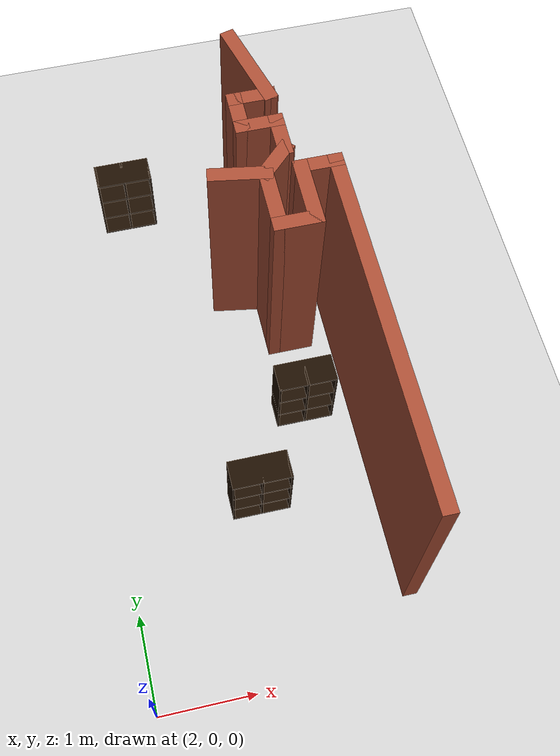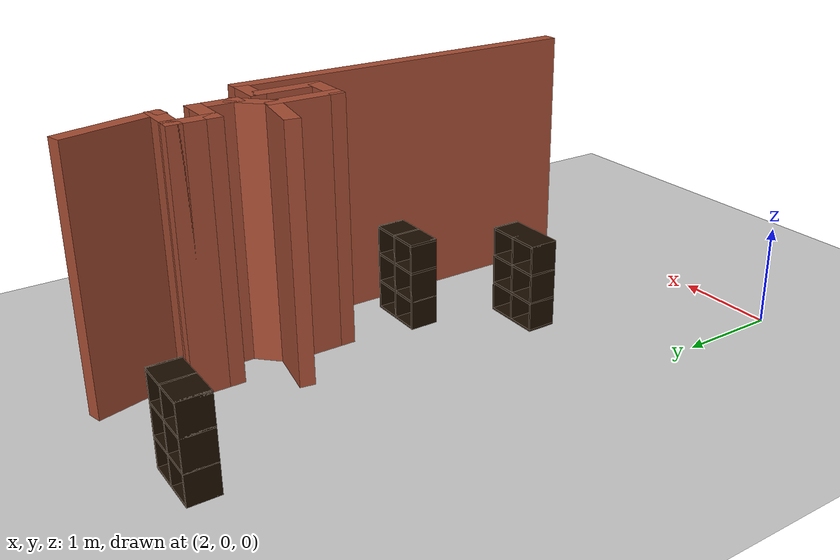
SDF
<sdf version="1.6">
 <world name="default">
  <model name="ground_plane">
   <static>1</static>
   <link name="link">
    <collision name="collision">
     <geometry><plane><normal>0 0 1</normal><size>100 100</size></plane></geometry>
     <surface><friction><ode><mu>100</mu><mu2>50</mu2></ode></friction></surface>
    </collision>
    <visual name="visual">
     <cast_shadows>0</cast_shadows>
     <geometry><plane><normal>0 0 1</normal><size>100 100</size></plane></geometry>
     <material>
      <script><uri>file://media/materials/scripts/gazebo.material</uri><name>Gazebo/Grey</name></script>
     </material>
    </visual>
   </link>
  </model>
  <model name="map_45">
   <link name="Wall_128">
    <pose>4.21616 4.14715 0 0 0 -0.162711</pose>
    <visual name="Wall_128_Visual">
     <pose>0 0 1.25 0 -0 0</pose>
     <geometry><box><size>0.641843 0.15 2.5</size></box></geometry>
     <material>
      <script><uri>file://media/materials/scripts/gazebo.material</uri><name>Gazebo/Bricks</name></script>
      <ambient>1 1 1 1</ambient>
      <shader type="pixel"/>
     </material>
     <meta><layer>0</layer></meta>
    </visual>
    <collision name="Wall_128_Collision">
     <pose>0 0 1.25 0 -0 0</pose>
     <geometry><box><size>0.641843 0.15 2.5</size></box></geometry>
     <surface>
      <friction>
       <ode><mu>1</mu><mu2>1</mu2><fdir1>0 0 0</fdir1><slip1>0</slip1><slip2>0</slip2></ode>
       <torsional>
        <coefficient>1</coefficient>
        <patch_radius>0</patch_radius>
        <surface_radius>0</surface_radius>
        <use_patch_radius>1</use_patch_radius>
        <ode><slip>0</slip></ode>
       </torsional>
      </friction>
      <bounce><restitution_coefficient>0</restitution_coefficient><threshold>1e+06</threshold></bounce>
      <contact>
       <collide_without_contact>0</collide_without_contact>
       <collide_without_contact_bitmask>1</collide_without_contact_bitmask>
       <collide_bitmask>1</collide_bitmask>
       <ode>
        <soft_cfm>0</soft_cfm>
        <soft_erp>0.2</soft_erp>
        <kp>1e+13</kp>
        <kd>1</kd>
        <max_vel>0.01</max_vel>
        <min_depth>0</min_depth>
       </ode>
       <bullet>
        <split_impulse>1</split_impulse>
        <split_impulse_penetration_threshold>-0.01</split_impulse_penetration_threshold>
        <soft_cfm>0</soft_cfm>
        <soft_erp>0.2</soft_erp>
        <kp>1e+13</kp>
        <kd>1</kd>
       </bullet>
      </contact>
     </surface>
    </collision>
   </link>
   <link name="Wall_74">
    <pose>5.15883 2.30731 0 0 -0 1.5708</pose>
    <visual name="Wall_74_Visual">
     <pose>0 0 1.25 0 -0 0</pose>
     <geometry><box><size>3.75 0.15 2.5</size></box></geometry>
     <material>
      <script><uri>file://media/materials/scripts/gazebo.material</uri><name>Gazebo/Bricks</name></script>
      <ambient>1 1 1 1</ambient>
      <shader type="pixel"/>
     </material>
     <meta><layer>0</layer></meta>
    </visual>
    <collision name="Wall_74_Collision">
     <pose>0 0 1.25 0 -0 0</pose>
     <geometry><box><size>3.75 0.15 2.5</size></box></geometry>
     <surface>
      <friction>
       <ode><mu>1</mu><mu2>1</mu2><fdir1>0 0 0</fdir1><slip1>0</slip1><slip2>0</slip2></ode>
       <torsional>
        <coefficient>1</coefficient>
        <patch_radius>0</patch_radius>
        <surface_radius>0</surface_radius>
        <use_patch_radius>1</use_patch_radius>
        <ode><slip>0</slip></ode>
       </torsional>
      </friction>
      <bounce><restitution_coefficient>0</restitution_coefficient><threshold>1e+06</threshold></bounce>
      <contact>
       <collide_without_contact>0</collide_without_contact>
       <collide_without_contact_bitmask>1</collide_without_contact_bitmask>
       <collide_bitmask>1</collide_bitmask>
       <ode>
        <soft_cfm>0</soft_cfm>
        <soft_erp>0.2</soft_erp>
        <kp>1e+13</kp>
        <kd>1</kd>
        <max_vel>0.01</max_vel>
        <min_depth>0</min_depth>
       </ode>
       <bullet>
        <split_impulse>1</split_impulse>
        <split_impulse_penetration_threshold>-0.01</split_impulse_penetration_threshold>
        <soft_cfm>0</soft_cfm>
        <soft_erp>0.2</soft_erp>
        <kp>1e+13</kp>
        <kd>1</kd>
       </bullet>
      </contact>
     </surface>
    </collision>
   </link>
   <link name="Wall_75">
    <pose>4.98383 4.10731 0 0 -0 3.14159</pose>
    <visual name="Wall_75_Visual">
     <pose>0 0 1.25 0 -0 0</pose>
     <geometry><box><size>0.5 0.15 2.5</size></box></geometry>
     <material>
      <script><uri>file://media/materials/scripts/gazebo.material</uri><name>Gazebo/Bricks</name></script>
      <ambient>1 1 1 1</ambient>
      <shader type="pixel"/>
     </material>
     <meta><layer>0</layer></meta>
    </visual>
    <collision name="Wall_75_Collision">
     <pose>0 0 1.25 0 -0 0</pose>
     <geometry><box><size>0.5 0.15 2.5</size></box></geometry>
     <surface>
      <friction>
       <ode><mu>1</mu><mu2>1</mu2><fdir1>0 0 0</fdir1><slip1>0</slip1><slip2>0</slip2></ode>
       <torsional>
        <coefficient>1</coefficient>
        <patch_radius>0</patch_radius>
        <surface_radius>0</surface_radius>
        <use_patch_radius>1</use_patch_radius>
        <ode><slip>0</slip></ode>
       </torsional>
      </friction>
      <bounce><restitution_coefficient>0</restitution_coefficient><threshold>1e+06</threshold></bounce>
      <contact>
       <collide_without_contact>0</collide_without_contact>
       <collide_without_contact_bitmask>1</collide_without_contact_bitmask>
       <collide_bitmask>1</collide_bitmask>
       <ode>
        <soft_cfm>0</soft_cfm>
        <soft_erp>0.2</soft_erp>
        <kp>1e+13</kp>
        <kd>1</kd>
        <max_vel>0.01</max_vel>
        <min_depth>0</min_depth>
       </ode>
       <bullet>
        <split_impulse>1</split_impulse>
        <split_impulse_penetration_threshold>-0.01</split_impulse_penetration_threshold>
        <soft_cfm>0</soft_cfm>
        <soft_erp>0.2</soft_erp>
        <kp>1e+13</kp>
        <kd>1</kd>
       </bullet>
      </contact>
     </surface>
    </collision>
   </link>
   <link name="Wall_76">
    <pose>4.80883 3.80731 0 0 0 -1.5708</pose>
    <visual name="Wall_76_Visual">
     <pose>0 0 1.25 0 -0 0</pose>
     <geometry><box><size>0.75 0.15 2.5</size></box></geometry>
     <material>
      <script><uri>file://media/materials/scripts/gazebo.material</uri><name>Gazebo/Bricks</name></script>
      <ambient>1 1 1 1</ambient>
      <shader type="pixel"/>
     </material>
     <meta><layer>0</layer></meta>
    </visual>
    <collision name="Wall_76_Collision">
     <pose>0 0 1.25 0 -0 0</pose>
     <geometry><box><size>0.75 0.15 2.5</size></box></geometry>
     <surface>
      <friction>
       <ode><mu>1</mu><mu2>1</mu2><fdir1>0 0 0</fdir1><slip1>0</slip1><slip2>0</slip2></ode>
       <torsional>
        <coefficient>1</coefficient>
        <patch_radius>0</patch_radius>
        <surface_radius>0</surface_radius>
        <use_patch_radius>1</use_patch_radius>
        <ode><slip>0</slip></ode>
       </torsional>
      </friction>
      <bounce><restitution_coefficient>0</restitution_coefficient><threshold>1e+06</threshold></bounce>
      <contact>
       <collide_without_contact>0</collide_without_contact>
       <collide_without_contact_bitmask>1</collide_without_contact_bitmask>
       <collide_bitmask>1</collide_bitmask>
       <ode>
        <soft_cfm>0</soft_cfm>
        <soft_erp>0.2</soft_erp>
        <kp>1e+13</kp>
        <kd>1</kd>
        <max_vel>0.01</max_vel>
        <min_depth>0</min_depth>
       </ode>
       <bullet>
        <split_impulse>1</split_impulse>
        <split_impulse_penetration_threshold>-0.01</split_impulse_penetration_threshold>
        <soft_cfm>0</soft_cfm>
        <soft_erp>0.2</soft_erp>
        <kp>1e+13</kp>
        <kd>1</kd>
       </bullet>
      </contact>
     </surface>
    </collision>
   </link>
   <link name="Wall_77">
    <pose>4.63383 3.50731 0 0 -0 3.14159</pose>
    <visual name="Wall_77_Visual">
     <pose>0 0 1.25 0 -0 0</pose>
     <geometry><box><size>0.5 0.15 2.5</size></box></geometry>
     <material>
      <script><uri>file://media/materials/scripts/gazebo.material</uri><name>Gazebo/Bricks</name></script>
      <ambient>1 1 1 1</ambient>
      <shader type="pixel"/>
     </material>
     <meta><layer>0</layer></meta>
    </visual>
    <collision name="Wall_77_Collision">
     <pose>0 0 1.25 0 -0 0</pose>
     <geometry><box><size>0.5 0.15 2.5</size></box></geometry>
     <surface>
      <friction>
       <ode><mu>1</mu><mu2>1</mu2><fdir1>0 0 0</fdir1><slip1>0</slip1><slip2>0</slip2></ode>
       <torsional>
        <coefficient>1</coefficient>
        <patch_radius>0</patch_radius>
        <surface_radius>0</surface_radius>
        <use_patch_radius>1</use_patch_radius>
        <ode><slip>0</slip></ode>
       </torsional>
      </friction>
      <bounce><restitution_coefficient>0</restitution_coefficient><threshold>1e+06</threshold></bounce>
      <contact>
       <collide_without_contact>0</collide_without_contact>
       <collide_without_contact_bitmask>1</collide_without_contact_bitmask>
       <collide_bitmask>1</collide_bitmask>
       <ode>
        <soft_cfm>0</soft_cfm>
        <soft_erp>0.2</soft_erp>
        <kp>1e+13</kp>
        <kd>1</kd>
        <max_vel>0.01</max_vel>
        <min_depth>0</min_depth>
       </ode>
       <bullet>
        <split_impulse>1</split_impulse>
        <split_impulse_penetration_threshold>-0.01</split_impulse_penetration_threshold>
        <soft_cfm>0</soft_cfm>
        <soft_erp>0.2</soft_erp>
        <kp>1e+13</kp>
        <kd>1</kd>
       </bullet>
      </contact>
     </surface>
    </collision>
   </link>
   <link name="Wall_78">
    <pose>4.45883 3.80731 0 0 -0 1.5708</pose>
    <visual name="Wall_78_Visual">
     <pose>0 0 1.25 0 -0 0</pose>
     <geometry><box><size>0.75 0.15 2.5</size></box></geometry>
     <material>
      <script><uri>file://media/materials/scripts/gazebo.material</uri><name>Gazebo/Bricks</name></script>
      <ambient>1 1 1 1</ambient>
      <shader type="pixel"/>
     </material>
     <meta><layer>0</layer></meta>
    </visual>
    <collision name="Wall_78_Collision">
     <pose>0 0 1.25 0 -0 0</pose>
     <geometry><box><size>0.75 0.15 2.5</size></box></geometry>
     <surface>
      <friction>
       <ode><mu>1</mu><mu2>1</mu2><fdir1>0 0 0</fdir1><slip1>0</slip1><slip2>0</slip2></ode>
       <torsional>
        <coefficient>1</coefficient>
        <patch_radius>0</patch_radius>
        <surface_radius>0</surface_radius>
        <use_patch_radius>1</use_patch_radius>
        <ode><slip>0</slip></ode>
       </torsional>
      </friction>
      <bounce><restitution_coefficient>0</restitution_coefficient><threshold>1e+06</threshold></bounce>
      <contact>
       <collide_without_contact>0</collide_without_contact>
       <collide_without_contact_bitmask>1</collide_without_contact_bitmask>
       <collide_bitmask>1</collide_bitmask>
       <ode>
        <soft_cfm>0</soft_cfm>
        <soft_erp>0.2</soft_erp>
        <kp>1e+13</kp>
        <kd>1</kd>
        <max_vel>0.01</max_vel>
        <min_depth>0</min_depth>
       </ode>
       <bullet>
        <split_impulse>1</split_impulse>
        <split_impulse_penetration_threshold>-0.01</split_impulse_penetration_threshold>
        <soft_cfm>0</soft_cfm>
        <soft_erp>0.2</soft_erp>
        <kp>1e+13</kp>
        <kd>1</kd>
       </bullet>
      </contact>
     </surface>
    </collision>
   </link>
   <link name="Wall_79">
    <pose>4.58258 4.23105 0 0 -0 0.785398</pose>
    <visual name="Wall_79_Visual">
     <pose>0 0 1.25 0 -0 0</pose>
     <geometry><box><size>0.5 0.15 2.5</size></box></geometry>
     <material>
      <script><uri>file://media/materials/scripts/gazebo.material</uri><name>Gazebo/Bricks</name></script>
      <ambient>1 1 1 1</ambient>
      <shader type="pixel"/>
     </material>
     <meta><layer>0</layer></meta>
    </visual>
    <collision name="Wall_79_Collision">
     <pose>0 0 1.25 0 -0 0</pose>
     <geometry><box><size>0.5 0.15 2.5</size></box></geometry>
     <surface>
      <friction>
       <ode><mu>1</mu><mu2>1</mu2><fdir1>0 0 0</fdir1><slip1>0</slip1><slip2>0</slip2></ode>
       <torsional>
        <coefficient>1</coefficient>
        <patch_radius>0</patch_radius>
        <surface_radius>0</surface_radius>
        <use_patch_radius>1</use_patch_radius>
        <ode><slip>0</slip></ode>
       </torsional>
      </friction>
      <bounce><restitution_coefficient>0</restitution_coefficient><threshold>1e+06</threshold></bounce>
      <contact>
       <collide_without_contact>0</collide_without_contact>
       <collide_without_contact_bitmask>1</collide_without_contact_bitmask>
       <collide_bitmask>1</collide_bitmask>
       <ode>
        <soft_cfm>0</soft_cfm>
        <soft_erp>0.2</soft_erp>
        <kp>1e+13</kp>
        <kd>1</kd>
        <max_vel>0.01</max_vel>
        <min_depth>0</min_depth>
       </ode>
       <bullet>
        <split_impulse>1</split_impulse>
        <split_impulse_penetration_threshold>-0.01</split_impulse_penetration_threshold>
        <soft_cfm>0</soft_cfm>
        <soft_erp>0.2</soft_erp>
        <kp>1e+13</kp>
        <kd>1</kd>
       </bullet>
      </contact>
     </surface>
    </collision>
   </link>
   <link name="Wall_80">
    <pose>4.70632 4.5298 0 0 -0 1.5708</pose>
    <visual name="Wall_80_Visual">
     <pose>0 0 1.25 0 -0 0</pose>
     <geometry><box><size>0.5 0.15 2.5</size></box></geometry>
     <material>
      <script><uri>file://media/materials/scripts/gazebo.material</uri><name>Gazebo/Bricks</name></script>
      <ambient>1 1 1 1</ambient>
      <shader type="pixel"/>
     </material>
     <meta><layer>0</layer></meta>
    </visual>
    <collision name="Wall_80_Collision">
     <pose>0 0 1.25 0 -0 0</pose>
     <geometry><box><size>0.5 0.15 2.5</size></box></geometry>
     <surface>
      <friction>
       <ode><mu>1</mu><mu2>1</mu2><fdir1>0 0 0</fdir1><slip1>0</slip1><slip2>0</slip2></ode>
       <torsional>
        <coefficient>1</coefficient>
        <patch_radius>0</patch_radius>
        <surface_radius>0</surface_radius>
        <use_patch_radius>1</use_patch_radius>
        <ode><slip>0</slip></ode>
       </torsional>
      </friction>
      <bounce><restitution_coefficient>0</restitution_coefficient><threshold>1e+06</threshold></bounce>
      <contact>
       <collide_without_contact>0</collide_without_contact>
       <collide_without_contact_bitmask>1</collide_without_contact_bitmask>
       <collide_bitmask>1</collide_bitmask>
       <ode>
        <soft_cfm>0</soft_cfm>
        <soft_erp>0.2</soft_erp>
        <kp>1e+13</kp>
        <kd>1</kd>
        <max_vel>0.01</max_vel>
        <min_depth>0</min_depth>
       </ode>
       <bullet>
        <split_impulse>1</split_impulse>
        <split_impulse_penetration_threshold>-0.01</split_impulse_penetration_threshold>
        <soft_cfm>0</soft_cfm>
        <soft_erp>0.2</soft_erp>
        <kp>1e+13</kp>
        <kd>1</kd>
       </bullet>
      </contact>
     </surface>
    </collision>
   </link>
   <link name="Wall_81">
    <pose>4.53132 4.7048 0 0 -0 3.14159</pose>
    <visual name="Wall_81_Visual">
     <pose>0 0 1.25 0 -0 0</pose>
     <geometry><box><size>0.5 0.15 2.5</size></box></geometry>
     <material>
      <script><uri>file://media/materials/scripts/gazebo.material</uri><name>Gazebo/Bricks</name></script>
      <ambient>1 1 1 1</ambient>
      <shader type="pixel"/>
     </material>
     <meta><layer>0</layer></meta>
    </visual>
    <collision name="Wall_81_Collision">
     <pose>0 0 1.25 0 -0 0</pose>
     <geometry><box><size>0.5 0.15 2.5</size></box></geometry>
     <surface>
      <friction>
       <ode><mu>1</mu><mu2>1</mu2><fdir1>0 0 0</fdir1><slip1>0</slip1><slip2>0</slip2></ode>
       <torsional>
        <coefficient>1</coefficient>
        <patch_radius>0</patch_radius>
        <surface_radius>0</surface_radius>
        <use_patch_radius>1</use_patch_radius>
        <ode><slip>0</slip></ode>
       </torsional>
      </friction>
      <bounce><restitution_coefficient>0</restitution_coefficient><threshold>1e+06</threshold></bounce>
      <contact>
       <collide_without_contact>0</collide_without_contact>
       <collide_without_contact_bitmask>1</collide_without_contact_bitmask>
       <collide_bitmask>1</collide_bitmask>
       <ode>
        <soft_cfm>0</soft_cfm>
        <soft_erp>0.2</soft_erp>
        <kp>1e+13</kp>
        <kd>1</kd>
        <max_vel>0.01</max_vel>
        <min_depth>0</min_depth>
       </ode>
       <bullet>
        <split_impulse>1</split_impulse>
        <split_impulse_penetration_threshold>-0.01</split_impulse_penetration_threshold>
        <soft_cfm>0</soft_cfm>
        <soft_erp>0.2</soft_erp>
        <kp>1e+13</kp>
        <kd>1</kd>
       </bullet>
      </contact>
     </surface>
    </collision>
   </link>
   <link name="Wall_82">
    <pose>4.35632 4.8798 0 0 -0 1.5708</pose>
    <visual name="Wall_82_Visual">
     <pose>0 0 1.25 0 -0 0</pose>
     <geometry><box><size>0.5 0.15 2.5</size></box></geometry>
     <material>
      <script><uri>file://media/materials/scripts/gazebo.material</uri><name>Gazebo/Bricks</name></script>
      <ambient>1 1 1 1</ambient>
      <shader type="pixel"/>
     </material>
     <meta><layer>0</layer></meta>
    </visual>
    <collision name="Wall_82_Collision">
     <pose>0 0 1.25 0 -0 0</pose>
     <geometry><box><size>0.5 0.15 2.5</size></box></geometry>
     <surface>
      <friction>
       <ode><mu>1</mu><mu2>1</mu2><fdir1>0 0 0</fdir1><slip1>0</slip1><slip2>0</slip2></ode>
       <torsional>
        <coefficient>1</coefficient>
        <patch_radius>0</patch_radius>
        <surface_radius>0</surface_radius>
        <use_patch_radius>1</use_patch_radius>
        <ode><slip>0</slip></ode>
       </torsional>
      </friction>
      <bounce><restitution_coefficient>0</restitution_coefficient><threshold>1e+06</threshold></bounce>
      <contact>
       <collide_without_contact>0</collide_without_contact>
       <collide_without_contact_bitmask>1</collide_without_contact_bitmask>
       <collide_bitmask>1</collide_bitmask>
       <ode>
        <soft_cfm>0</soft_cfm>
        <soft_erp>0.2</soft_erp>
        <kp>1e+13</kp>
        <kd>1</kd>
        <max_vel>0.01</max_vel>
        <min_depth>0</min_depth>
       </ode>
       <bullet>
        <split_impulse>1</split_impulse>
        <split_impulse_penetration_threshold>-0.01</split_impulse_penetration_threshold>
        <soft_cfm>0</soft_cfm>
        <soft_erp>0.2</soft_erp>
        <kp>1e+13</kp>
        <kd>1</kd>
       </bullet>
      </contact>
     </surface>
    </collision>
   </link>
   <link name="Wall_83">
    <pose>4.53132 5.0548 0 0 -0 0</pose>
    <visual name="Wall_83_Visual">
     <pose>0 0 1.25 0 -0 0</pose>
     <geometry><box><size>0.5 0.15 2.5</size></box></geometry>
     <material>
      <script><uri>file://media/materials/scripts/gazebo.material</uri><name>Gazebo/Bricks</name></script>
      <ambient>1 1 1 1</ambient>
      <shader type="pixel"/>
     </material>
     <meta><layer>0</layer></meta>
    </visual>
    <collision name="Wall_83_Collision">
     <pose>0 0 1.25 0 -0 0</pose>
     <geometry><box><size>0.5 0.15 2.5</size></box></geometry>
     <surface>
      <friction>
       <ode><mu>1</mu><mu2>1</mu2><fdir1>0 0 0</fdir1><slip1>0</slip1><slip2>0</slip2></ode>
       <torsional>
        <coefficient>1</coefficient>
        <patch_radius>0</patch_radius>
        <surface_radius>0</surface_radius>
        <use_patch_radius>1</use_patch_radius>
        <ode><slip>0</slip></ode>
       </torsional>
      </friction>
      <bounce><restitution_coefficient>0</restitution_coefficient><threshold>1e+06</threshold></bounce>
      <contact>
       <collide_without_contact>0</collide_without_contact>
       <collide_without_contact_bitmask>1</collide_without_contact_bitmask>
       <collide_bitmask>1</collide_bitmask>
       <ode>
        <soft_cfm>0</soft_cfm>
        <soft_erp>0.2</soft_erp>
        <kp>1e+13</kp>
        <kd>1</kd>
        <max_vel>0.01</max_vel>
        <min_depth>0</min_depth>
       </ode>
       <bullet>
        <split_impulse>1</split_impulse>
        <split_impulse_penetration_threshold>-0.01</split_impulse_penetration_threshold>
        <soft_cfm>0</soft_cfm>
        <soft_erp>0.2</soft_erp>
        <kp>1e+13</kp>
        <kd>1</kd>
       </bullet>
      </contact>
     </surface>
    </collision>
   </link>
   <link name="Wall_86">
    <pose>4.59632 5.46532 0 0 -0 1.8326</pose>
    <visual name="Wall_86_Visual">
     <pose>0 0 1.25 0 -0 0</pose>
     <geometry><box><size>1 0.15 2.5</size></box></geometry>
     <material>
      <script><uri>file://media/materials/scripts/gazebo.material</uri><name>Gazebo/Bricks</name></script>
      <ambient>1 1 1 1</ambient>
      <shader type="pixel"/>
     </material>
     <meta><layer>0</layer></meta>
    </visual>
    <collision name="Wall_86_Collision">
     <pose>0 0 1.25 0 -0 0</pose>
     <geometry><box><size>1 0.15 2.5</size></box></geometry>
     <surface>
      <friction>
       <ode><mu>1</mu><mu2>1</mu2><fdir1>0 0 0</fdir1><slip1>0</slip1><slip2>0</slip2></ode>
       <torsional>
        <coefficient>1</coefficient>
        <patch_radius>0</patch_radius>
        <surface_radius>0</surface_radius>
        <use_patch_radius>1</use_patch_radius>
        <ode><slip>0</slip></ode>
       </torsional>
      </friction>
      <bounce><restitution_coefficient>0</restitution_coefficient><threshold>1e+06</threshold></bounce>
      <contact>
       <collide_without_contact>0</collide_without_contact>
       <collide_without_contact_bitmask>1</collide_without_contact_bitmask>
       <collide_bitmask>1</collide_bitmask>
       <ode>
        <soft_cfm>0</soft_cfm>
        <soft_erp>0.2</soft_erp>
        <kp>1e+13</kp>
        <kd>1</kd>
        <max_vel>0.01</max_vel>
        <min_depth>0</min_depth>
       </ode>
       <bullet>
        <split_impulse>1</split_impulse>
        <split_impulse_penetration_threshold>-0.01</split_impulse_penetration_threshold>
        <soft_cfm>0</soft_cfm>
        <soft_erp>0.2</soft_erp>
        <kp>1e+13</kp>
        <kd>1</kd>
       </bullet>
      </contact>
     </surface>
    </collision>
   </link>
   <static>1</static>
   <pose>-0.4298 0.19019 0 0 -0 0</pose>
  </model>
  <model name="6_Cube_StorageE">
   <link name="Wall_0">
    <pose>0 0 0.01 0 -0 0</pose>
    <inertial>
     <mass>1.6201</mass>
     <inertia><ixx>0.0119</ixx><iyy>0.0631</iyy><izz>0.0513</izz><ixy>0</ixy><ixz>0</ixz><iyz>0</iyz></inertia>
    </inertial>
    <collision name="Wall_0_Collision"><geometry><box><size>0.616 0.296 0.02</size></box></geometry></collision>
    <visual name="Wall_0_Visual">
     <geometry><box><size>0.616 0.296 0.02</size></box></geometry>
     <material>
      <script><uri>file://media/materials/scripts/gazebo.material</uri><name>Gazebo/Grey</name></script>
      <ambient>0.105882 0.0509804 0 1</ambient>
     </material>
    </visual>
   </link>
   <joint name="0_2" type="fixed">
    <pose>-0.308 0 0 0 -0 0</pose>
    <parent>Wall_2</parent>
    <child>Wall_0</child>
    <axis>
     <xyz>1 0 0</xyz>
     <use_parent_model_frame>0</use_parent_model_frame>
     <limit><lower>-1e+16</lower><upper>1e+16</upper></limit>
    </axis>
   </joint>
   <joint name="0_12" type="fixed">
    <parent>Wall_12</parent>
    <child>Wall_0</child>
    <axis>
     <xyz>0 0 1</xyz>
     <use_parent_model_frame>0</use_parent_model_frame>
     <limit><lower>-1e+16</lower><upper>1e+16</upper></limit>
    </axis>
   </joint>
   <joint name="0_4" type="fixed">
    <pose>0.308 0 0 0 -0 0</pose>
    <parent>Wall_4</parent>
    <child>Wall_0</child>
    <axis>
     <xyz>1 0 0</xyz>
     <use_parent_model_frame>0</use_parent_model_frame>
     <limit><lower>-1e+16</lower><upper>1e+16</upper></limit>
    </axis>
   </joint>
   <link name="Wall_10">
    <pose>0 0 0.61 0 -0 0</pose>
    <inertial>
     <mass>1.6201</mass>
     <inertia><ixx>0.0119</ixx><iyy>0.0631</iyy><izz>0.0513</izz><ixy>0</ixy><ixz>0</ixz><iyz>0</iyz></inertia>
    </inertial>
    <collision name="Wall_10_Collision"><geometry><box><size>0.616 0.296 0.02</size></box></geometry></collision>
    <visual name="Wall_10_Visual">
     <geometry><box><size>0.616 0.296 0.02</size></box></geometry>
     <material>
      <script><uri>file://media/materials/scripts/gazebo.material</uri><name>Gazebo/Grey</name></script>
      <ambient>0.105882 0.0509804 0 1</ambient>
     </material>
    </visual>
   </link>
   <joint name="10_2" type="fixed">
    <pose>-0.308 0 0 0 -0 0</pose>
    <parent>Wall_2</parent>
    <child>Wall_10</child>
    <axis>
     <xyz>1 0 0</xyz>
     <use_parent_model_frame>0</use_parent_model_frame>
     <limit><lower>-1e+16</lower><upper>1e+16</upper></limit>
    </axis>
   </joint>
   <joint name="10_12" type="fixed">
    <parent>Wall_12</parent>
    <child>Wall_10</child>
    <axis>
     <xyz>0 0 1</xyz>
     <use_parent_model_frame>0</use_parent_model_frame>
     <limit><lower>-1e+16</lower><upper>1e+16</upper></limit>
    </axis>
   </joint>
   <joint name="10_4" type="fixed">
    <pose>0.308 0 0 0 -0 0</pose>
    <parent>Wall_4</parent>
    <child>Wall_10</child>
    <axis>
     <xyz>1 0 0</xyz>
     <use_parent_model_frame>0</use_parent_model_frame>
     <limit><lower>-1e+16</lower><upper>1e+16</upper></limit>
    </axis>
   </joint>
   <link name="Wall_12">
    <pose>0 0 0.4575 0 -0 0</pose>
    <inertial>
     <mass>2.4065</mass>
     <inertia><ixx>0.0177</ixx><iyy>0.1855</iyy><izz>0.168</izz><ixy>0</ixy><ixz>0</ixz><iyz>0</iyz></inertia>
    </inertial>
    <collision name="Wall_12_Collision"><geometry><box><size>0.02 0.296 0.915</size></box></geometry></collision>
    <visual name="Wall_12_Visual">
     <geometry><box><size>0.02 0.296 0.915</size></box></geometry>
     <material>
      <script><uri>file://media/materials/scripts/gazebo.material</uri><name>Gazebo/Grey</name></script>
      <ambient>0.105882 0.0509804 0 1</ambient>
     </material>
    </visual>
   </link>
   <link name="Wall_2">
    <pose>-0.298 0 0.4575 0 -0 0</pose>
    <inertial>
     <mass>2.4065</mass>
     <inertia><ixx>0.0177</ixx><iyy>0.1855</iyy><izz>0.168</izz><ixy>0</ixy><ixz>0</ixz><iyz>0</iyz></inertia>
    </inertial>
    <collision name="Wall_2_Collision"><geometry><box><size>0.02 0.296 0.915</size></box></geometry></collision>
    <visual name="Wall_2_Visual">
     <geometry><box><size>0.02 0.296 0.915</size></box></geometry>
     <material>
      <script><uri>file://media/materials/scripts/gazebo.material</uri><name>Gazebo/Grey</name></script>
      <ambient>0.105882 0.0509804 0 1</ambient>
     </material>
    </visual>
   </link>
   <link name="Wall_4">
    <pose>0.298 0 0.4575 0 -0 0</pose>
    <inertial>
     <mass>2.4065</mass>
     <inertia><ixx>0.0177</ixx><iyy>0.1855</iyy><izz>0.168</izz><ixy>0</ixy><ixz>0</ixz><iyz>0</iyz></inertia>
    </inertial>
    <collision name="Wall_4_Collision"><geometry><box><size>0.02 0.296 0.915</size></box></geometry></collision>
    <visual name="Wall_4_Visual">
     <geometry><box><size>0.02 0.296 0.915</size></box></geometry>
     <material>
      <script><uri>file://media/materials/scripts/gazebo.material</uri><name>Gazebo/Grey</name></script>
      <ambient>0.105882 0.0509804 0 1</ambient>
     </material>
    </visual>
   </link>
   <link name="Wall_6">
    <pose>0 0 0.905 0 -0 0</pose>
    <inertial>
     <mass>1.6201</mass>
     <inertia><ixx>0.0119</ixx><iyy>0.0631</iyy><izz>0.0513</izz><ixy>0</ixy><ixz>0</ixz><iyz>0</iyz></inertia>
    </inertial>
    <collision name="Wall_6_Collision"><geometry><box><size>0.616 0.296 0.02</size></box></geometry></collision>
    <visual name="Wall_6_Visual">
     <geometry><box><size>0.616 0.296 0.02</size></box></geometry>
     <material>
      <script><uri>file://media/materials/scripts/gazebo.material</uri><name>Gazebo/Grey</name></script>
      <ambient>0.105882 0.0509804 0 1</ambient>
     </material>
    </visual>
   </link>
   <joint name="6_2" type="fixed">
    <pose>-0.308 0 0 0 -0 0</pose>
    <parent>Wall_2</parent>
    <child>Wall_6</child>
    <axis>
     <xyz>2 0 0</xyz>
     <use_parent_model_frame>0</use_parent_model_frame>
     <limit><lower>-1e+16</lower><upper>1e+16</upper></limit>
    </axis>
   </joint>
   <joint name="6_12" type="fixed">
    <parent>Wall_12</parent>
    <child>Wall_6</child>
    <axis>
     <xyz>0 0 1</xyz>
     <use_parent_model_frame>0</use_parent_model_frame>
     <limit><lower>-1e+16</lower><upper>1e+16</upper></limit>
    </axis>
   </joint>
   <joint name="6_4" type="fixed">
    <pose>0.308 0 0 0 -0 0</pose>
    <parent>Wall_4</parent>
    <child>Wall_6</child>
    <axis>
     <xyz>1 0 0</xyz>
     <use_parent_model_frame>0</use_parent_model_frame>
     <limit><lower>-1e+16</lower><upper>1e+16</upper></limit>
    </axis>
   </joint>
   <link name="Wall_8">
    <pose>0 0 0.305 0 -0 0</pose>
    <inertial>
     <mass>1.6201</mass>
     <inertia><ixx>0.0119</ixx><iyy>0.0631</iyy><izz>0.0513</izz><ixy>0</ixy><ixz>0</ixz><iyz>0</iyz></inertia>
    </inertial>
    <collision name="Wall_8_Collision"><geometry><box><size>0.616 0.296 0.02</size></box></geometry></collision>
    <visual name="Wall_8_Visual">
     <geometry><box><size>0.616 0.296 0.02</size></box></geometry>
     <material>
      <script><uri>file://media/materials/scripts/gazebo.material</uri><name>Gazebo/Grey</name></script>
      <ambient>0.105882 0.0509804 0 1</ambient>
     </material>
    </visual>
   </link>
   <joint name="8_2" type="fixed">
    <pose>-0.308 0 0 0 -0 0</pose>
    <parent>Wall_2</parent>
    <child>Wall_8</child>
    <axis>
     <xyz>1 0 0</xyz>
     <use_parent_model_frame>0</use_parent_model_frame>
     <limit><lower>-1e+16</lower><upper>1e+16</upper></limit>
    </axis>
   </joint>
   <joint name="8_12" type="fixed">
    <parent>Wall_12</parent>
    <child>Wall_8</child>
    <axis>
     <xyz>0 0 1</xyz>
     <use_parent_model_frame>0</use_parent_model_frame>
     <limit><lower>-1e+16</lower><upper>1e+16</upper></limit>
    </axis>
   </joint>
   <joint name="8_4" type="fixed">
    <pose>0.308 0 0 0 -0 0</pose>
    <parent>Wall_4</parent>
    <child>Wall_8</child>
    <axis>
     <xyz>1 0 0</xyz>
     <use_parent_model_frame>0</use_parent_model_frame>
     <limit><lower>-1e+16</lower><upper>1e+16</upper></limit>
    </axis>
   </joint>
   <static>1</static>
   <pose>4.15186 2.88233 0 0 -0 0</pose>
  </model>
  <model name="6_Cube_StorageE_0">
   <link name="Wall_0">
    <pose>0 0 0.01 0 -0 0</pose>
    <inertial>
     <mass>1.6201</mass>
     <inertia><ixx>0.0119</ixx><iyy>0.0631</iyy><izz>0.0513</izz><ixy>0</ixy><ixz>0</ixz><iyz>0</iyz></inertia>
    </inertial>
    <collision name="Wall_0_Collision"><geometry><box><size>0.616 0.296 0.02</size></box></geometry></collision>
    <visual name="Wall_0_Visual">
     <geometry><box><size>0.616 0.296 0.02</size></box></geometry>
     <material>
      <script><uri>file://media/materials/scripts/gazebo.material</uri><name>Gazebo/Grey</name></script>
      <ambient>0.105882 0.0509804 0 1</ambient>
     </material>
    </visual>
   </link>
   <joint name="0_2" type="fixed">
    <pose>-0.308 0 0 0 -0 0</pose>
    <parent>Wall_2</parent>
    <child>Wall_0</child>
    <axis>
     <xyz>1 0 0</xyz>
     <use_parent_model_frame>0</use_parent_model_frame>
     <limit><lower>-1e+16</lower><upper>1e+16</upper></limit>
    </axis>
   </joint>
   <joint name="0_12" type="fixed">
    <parent>Wall_12</parent>
    <child>Wall_0</child>
    <axis>
     <xyz>0 0 1</xyz>
     <use_parent_model_frame>0</use_parent_model_frame>
     <limit><lower>-1e+16</lower><upper>1e+16</upper></limit>
    </axis>
   </joint>
   <joint name="0_4" type="fixed">
    <pose>0.308 0 0 0 -0 0</pose>
    <parent>Wall_4</parent>
    <child>Wall_0</child>
    <axis>
     <xyz>1 0 0</xyz>
     <use_parent_model_frame>0</use_parent_model_frame>
     <limit><lower>-1e+16</lower><upper>1e+16</upper></limit>
    </axis>
   </joint>
   <link name="Wall_10">
    <pose>0 0 0.61 0 -0 0</pose>
    <inertial>
     <mass>1.6201</mass>
     <inertia><ixx>0.0119</ixx><iyy>0.0631</iyy><izz>0.0513</izz><ixy>0</ixy><ixz>0</ixz><iyz>0</iyz></inertia>
    </inertial>
    <collision name="Wall_10_Collision"><geometry><box><size>0.616 0.296 0.02</size></box></geometry></collision>
    <visual name="Wall_10_Visual">
     <geometry><box><size>0.616 0.296 0.02</size></box></geometry>
     <material>
      <script><uri>file://media/materials/scripts/gazebo.material</uri><name>Gazebo/Grey</name></script>
      <ambient>0.105882 0.0509804 0 1</ambient>
     </material>
    </visual>
   </link>
   <joint name="10_2" type="fixed">
    <pose>-0.308 0 0 0 -0 0</pose>
    <parent>Wall_2</parent>
    <child>Wall_10</child>
    <axis>
     <xyz>1 0 0</xyz>
     <use_parent_model_frame>0</use_parent_model_frame>
     <limit><lower>-1e+16</lower><upper>1e+16</upper></limit>
    </axis>
   </joint>
   <joint name="10_12" type="fixed">
    <parent>Wall_12</parent>
    <child>Wall_10</child>
    <axis>
     <xyz>0 0 1</xyz>
     <use_parent_model_frame>0</use_parent_model_frame>
     <limit><lower>-1e+16</lower><upper>1e+16</upper></limit>
    </axis>
   </joint>
   <joint name="10_4" type="fixed">
    <pose>0.308 0 0 0 -0 0</pose>
    <parent>Wall_4</parent>
    <child>Wall_10</child>
    <axis>
     <xyz>1 0 0</xyz>
     <use_parent_model_frame>0</use_parent_model_frame>
     <limit><lower>-1e+16</lower><upper>1e+16</upper></limit>
    </axis>
   </joint>
   <link name="Wall_12">
    <pose>0 0 0.4575 0 -0 0</pose>
    <inertial>
     <mass>2.4065</mass>
     <inertia><ixx>0.0177</ixx><iyy>0.1855</iyy><izz>0.168</izz><ixy>0</ixy><ixz>0</ixz><iyz>0</iyz></inertia>
    </inertial>
    <collision name="Wall_12_Collision"><geometry><box><size>0.02 0.296 0.915</size></box></geometry></collision>
    <visual name="Wall_12_Visual">
     <geometry><box><size>0.02 0.296 0.915</size></box></geometry>
     <material>
      <script><uri>file://media/materials/scripts/gazebo.material</uri><name>Gazebo/Grey</name></script>
      <ambient>0.105882 0.0509804 0 1</ambient>
     </material>
    </visual>
   </link>
   <link name="Wall_2">
    <pose>-0.298 0 0.4575 0 -0 0</pose>
    <inertial>
     <mass>2.4065</mass>
     <inertia><ixx>0.0177</ixx><iyy>0.1855</iyy><izz>0.168</izz><ixy>0</ixy><ixz>0</ixz><iyz>0</iyz></inertia>
    </inertial>
    <collision name="Wall_2_Collision"><geometry><box><size>0.02 0.296 0.915</size></box></geometry></collision>
    <visual name="Wall_2_Visual">
     <geometry><box><size>0.02 0.296 0.915</size></box></geometry>
     <material>
      <script><uri>file://media/materials/scripts/gazebo.material</uri><name>Gazebo/Grey</name></script>
      <ambient>0.105882 0.0509804 0 1</ambient>
     </material>
    </visual>
   </link>
   <link name="Wall_4">
    <pose>0.298 0 0.4575 0 -0 0</pose>
    <inertial>
     <mass>2.4065</mass>
     <inertia><ixx>0.0177</ixx><iyy>0.1855</iyy><izz>0.168</izz><ixy>0</ixy><ixz>0</ixz><iyz>0</iyz></inertia>
    </inertial>
    <collision name="Wall_4_Collision"><geometry><box><size>0.02 0.296 0.915</size></box></geometry></collision>
    <visual name="Wall_4_Visual">
     <geometry><box><size>0.02 0.296 0.915</size></box></geometry>
     <material>
      <script><uri>file://media/materials/scripts/gazebo.material</uri><name>Gazebo/Grey</name></script>
      <ambient>0.105882 0.0509804 0 1</ambient>
     </material>
    </visual>
   </link>
   <link name="Wall_6">
    <pose>0 0 0.905 0 -0 0</pose>
    <inertial>
     <mass>1.6201</mass>
     <inertia><ixx>0.0119</ixx><iyy>0.0631</iyy><izz>0.0513</izz><ixy>0</ixy><ixz>0</ixz><iyz>0</iyz></inertia>
    </inertial>
    <collision name="Wall_6_Collision"><geometry><box><size>0.616 0.296 0.02</size></box></geometry></collision>
    <visual name="Wall_6_Visual">
     <geometry><box><size>0.616 0.296 0.02</size></box></geometry>
     <material>
      <script><uri>file://media/materials/scripts/gazebo.material</uri><name>Gazebo/Grey</name></script>
      <ambient>0.105882 0.0509804 0 1</ambient>
     </material>
    </visual>
   </link>
   <joint name="6_2" type="fixed">
    <pose>-0.308 0 0 0 -0 0</pose>
    <parent>Wall_2</parent>
    <child>Wall_6</child>
    <axis>
     <xyz>2 0 0</xyz>
     <use_parent_model_frame>0</use_parent_model_frame>
     <limit><lower>-1e+16</lower><upper>1e+16</upper></limit>
    </axis>
   </joint>
   <joint name="6_12" type="fixed">
    <parent>Wall_12</parent>
    <child>Wall_6</child>
    <axis>
     <xyz>0 0 1</xyz>
     <use_parent_model_frame>0</use_parent_model_frame>
     <limit><lower>-1e+16</lower><upper>1e+16</upper></limit>
    </axis>
   </joint>
   <joint name="6_4" type="fixed">
    <pose>0.308 0 0 0 -0 0</pose>
    <parent>Wall_4</parent>
    <child>Wall_6</child>
    <axis>
     <xyz>1 0 0</xyz>
     <use_parent_model_frame>0</use_parent_model_frame>
     <limit><lower>-1e+16</lower><upper>1e+16</upper></limit>
    </axis>
   </joint>
   <link name="Wall_8">
    <pose>0 0 0.305 0 -0 0</pose>
    <inertial>
     <mass>1.6201</mass>
     <inertia><ixx>0.0119</ixx><iyy>0.0631</iyy><izz>0.0513</izz><ixy>0</ixy><ixz>0</ixz><iyz>0</iyz></inertia>
    </inertial>
    <collision name="Wall_8_Collision"><geometry><box><size>0.616 0.296 0.02</size></box></geometry></collision>
    <visual name="Wall_8_Visual">
     <geometry><box><size>0.616 0.296 0.02</size></box></geometry>
     <material>
      <script><uri>file://media/materials/scripts/gazebo.material</uri><name>Gazebo/Grey</name></script>
      <ambient>0.105882 0.0509804 0 1</ambient>
     </material>
    </visual>
   </link>
   <joint name="8_2" type="fixed">
    <pose>-0.308 0 0 0 -0 0</pose>
    <parent>Wall_2</parent>
    <child>Wall_8</child>
    <axis>
     <xyz>1 0 0</xyz>
     <use_parent_model_frame>0</use_parent_model_frame>
     <limit><lower>-1e+16</lower><upper>1e+16</upper></limit>
    </axis>
   </joint>
   <joint name="8_12" type="fixed">
    <parent>Wall_12</parent>
    <child>Wall_8</child>
    <axis>
     <xyz>0 0 1</xyz>
     <use_parent_model_frame>0</use_parent_model_frame>
     <limit><lower>-1e+16</lower><upper>1e+16</upper></limit>
    </axis>
   </joint>
   <joint name="8_4" type="fixed">
    <pose>0.308 0 0 0 -0 0</pose>
    <parent>Wall_4</parent>
    <child>Wall_8</child>
    <axis>
     <xyz>1 0 0</xyz>
     <use_parent_model_frame>0</use_parent_model_frame>
     <limit><lower>-1e+16</lower><upper>1e+16</upper></limit>
    </axis>
   </joint>
   <static>1</static>
   <pose>3.45346 1.94192 0 0 -0 0</pose>
  </model>
  <model name="6_Cube_StorageE_2">
   <link name="Wall_0">
    <pose>0 0 0.01 0 -0 0</pose>
    <inertial>
     <mass>1.6201</mass>
     <inertia><ixx>0.0119</ixx><iyy>0.0631</iyy><izz>0.0513</izz><ixy>0</ixy><ixz>0</ixz><iyz>0</iyz></inertia>
    </inertial>
    <collision name="Wall_0_Collision"><geometry><box><size>0.616 0.296 0.02</size></box></geometry></collision>
    <visual name="Wall_0_Visual">
     <geometry><box><size>0.616 0.296 0.02</size></box></geometry>
     <material>
      <script><uri>file://media/materials/scripts/gazebo.material</uri><name>Gazebo/Grey</name></script>
      <ambient>0.105882 0.0509804 0 1</ambient>
     </material>
    </visual>
   </link>
   <joint name="0_2" type="fixed">
    <pose>-0.308 0 0 0 -0 0</pose>
    <parent>Wall_2</parent>
    <child>Wall_0</child>
    <axis>
     <xyz>1 0 0</xyz>
     <use_parent_model_frame>0</use_parent_model_frame>
     <limit><lower>-1e+16</lower><upper>1e+16</upper></limit>
    </axis>
   </joint>
   <joint name="0_12" type="fixed">
    <parent>Wall_12</parent>
    <child>Wall_0</child>
    <axis>
     <xyz>0 0 1</xyz>
     <use_parent_model_frame>0</use_parent_model_frame>
     <limit><lower>-1e+16</lower><upper>1e+16</upper></limit>
    </axis>
   </joint>
   <joint name="0_4" type="fixed">
    <pose>0.308 0 0 0 -0 0</pose>
    <parent>Wall_4</parent>
    <child>Wall_0</child>
    <axis>
     <xyz>1 0 0</xyz>
     <use_parent_model_frame>0</use_parent_model_frame>
     <limit><lower>-1e+16</lower><upper>1e+16</upper></limit>
    </axis>
   </joint>
   <link name="Wall_10">
    <pose>0 0 0.61 0 -0 0</pose>
    <inertial>
     <mass>1.6201</mass>
     <inertia><ixx>0.0119</ixx><iyy>0.0631</iyy><izz>0.0513</izz><ixy>0</ixy><ixz>0</ixz><iyz>0</iyz></inertia>
    </inertial>
    <collision name="Wall_10_Collision"><geometry><box><size>0.616 0.296 0.02</size></box></geometry></collision>
    <visual name="Wall_10_Visual">
     <geometry><box><size>0.616 0.296 0.02</size></box></geometry>
     <material>
      <script><uri>file://media/materials/scripts/gazebo.material</uri><name>Gazebo/Grey</name></script>
      <ambient>0.105882 0.0509804 0 1</ambient>
     </material>
    </visual>
   </link>
   <joint name="10_2" type="fixed">
    <pose>-0.308 0 0 0 -0 0</pose>
    <parent>Wall_2</parent>
    <child>Wall_10</child>
    <axis>
     <xyz>1 0 0</xyz>
     <use_parent_model_frame>0</use_parent_model_frame>
     <limit><lower>-1e+16</lower><upper>1e+16</upper></limit>
    </axis>
   </joint>
   <joint name="10_12" type="fixed">
    <parent>Wall_12</parent>
    <child>Wall_10</child>
    <axis>
     <xyz>0 0 1</xyz>
     <use_parent_model_frame>0</use_parent_model_frame>
     <limit><lower>-1e+16</lower><upper>1e+16</upper></limit>
    </axis>
   </joint>
   <joint name="10_4" type="fixed">
    <pose>0.308 0 0 0 -0 0</pose>
    <parent>Wall_4</parent>
    <child>Wall_10</child>
    <axis>
     <xyz>1 0 0</xyz>
     <use_parent_model_frame>0</use_parent_model_frame>
     <limit><lower>-1e+16</lower><upper>1e+16</upper></limit>
    </axis>
   </joint>
   <link name="Wall_12">
    <pose>0 0 0.4575 0 -0 0</pose>
    <inertial>
     <mass>2.4065</mass>
     <inertia><ixx>0.0177</ixx><iyy>0.1855</iyy><izz>0.168</izz><ixy>0</ixy><ixz>0</ixz><iyz>0</iyz></inertia>
    </inertial>
    <collision name="Wall_12_Collision"><geometry><box><size>0.02 0.296 0.915</size></box></geometry></collision>
    <visual name="Wall_12_Visual">
     <geometry><box><size>0.02 0.296 0.915</size></box></geometry>
     <material>
      <script><uri>file://media/materials/scripts/gazebo.material</uri><name>Gazebo/Grey</name></script>
      <ambient>0.105882 0.0509804 0 1</ambient>
     </material>
    </visual>
   </link>
   <link name="Wall_2">
    <pose>-0.298 0 0.4575 0 -0 0</pose>
    <inertial>
     <mass>2.4065</mass>
     <inertia><ixx>0.0177</ixx><iyy>0.1855</iyy><izz>0.168</izz><ixy>0</ixy><ixz>0</ixz><iyz>0</iyz></inertia>
    </inertial>
    <collision name="Wall_2_Collision"><geometry><box><size>0.02 0.296 0.915</size></box></geometry></collision>
    <visual name="Wall_2_Visual">
     <geometry><box><size>0.02 0.296 0.915</size></box></geometry>
     <material>
      <script><uri>file://media/materials/scripts/gazebo.material</uri><name>Gazebo/Grey</name></script>
      <ambient>0.105882 0.0509804 0 1</ambient>
     </material>
    </visual>
   </link>
   <link name="Wall_4">
    <pose>0.298 0 0.4575 0 -0 0</pose>
    <inertial>
     <mass>2.4065</mass>
     <inertia><ixx>0.0177</ixx><iyy>0.1855</iyy><izz>0.168</izz><ixy>0</ixy><ixz>0</ixz><iyz>0</iyz></inertia>
    </inertial>
    <collision name="Wall_4_Collision"><geometry><box><size>0.02 0.296 0.915</size></box></geometry></collision>
    <visual name="Wall_4_Visual">
     <geometry><box><size>0.02 0.296 0.915</size></box></geometry>
     <material>
      <script><uri>file://media/materials/scripts/gazebo.material</uri><name>Gazebo/Grey</name></script>
      <ambient>0.105882 0.0509804 0 1</ambient>
     </material>
    </visual>
   </link>
   <link name="Wall_6">
    <pose>0 0 0.905 0 -0 0</pose>
    <inertial>
     <mass>1.6201</mass>
     <inertia><ixx>0.0119</ixx><iyy>0.0631</iyy><izz>0.0513</izz><ixy>0</ixy><ixz>0</ixz><iyz>0</iyz></inertia>
    </inertial>
    <collision name="Wall_6_Collision"><geometry><box><size>0.616 0.296 0.02</size></box></geometry></collision>
    <visual name="Wall_6_Visual">
     <geometry><box><size>0.616 0.296 0.02</size></box></geometry>
     <material>
      <script><uri>file://media/materials/scripts/gazebo.material</uri><name>Gazebo/Grey</name></script>
      <ambient>0.105882 0.0509804 0 1</ambient>
     </material>
    </visual>
   </link>
   <joint name="6_2" type="fixed">
    <pose>-0.308 0 0 0 -0 0</pose>
    <parent>Wall_2</parent>
    <child>Wall_6</child>
    <axis>
     <xyz>2 0 0</xyz>
     <use_parent_model_frame>0</use_parent_model_frame>
     <limit><lower>-1e+16</lower><upper>1e+16</upper></limit>
    </axis>
   </joint>
   <joint name="6_12" type="fixed">
    <parent>Wall_12</parent>
    <child>Wall_6</child>
    <axis>
     <xyz>0 0 1</xyz>
     <use_parent_model_frame>0</use_parent_model_frame>
     <limit><lower>-1e+16</lower><upper>1e+16</upper></limit>
    </axis>
   </joint>
   <joint name="6_4" type="fixed">
    <pose>0.308 0 0 0 -0 0</pose>
    <parent>Wall_4</parent>
    <child>Wall_6</child>
    <axis>
     <xyz>1 0 0</xyz>
     <use_parent_model_frame>0</use_parent_model_frame>
     <limit><lower>-1e+16</lower><upper>1e+16</upper></limit>
    </axis>
   </joint>
   <link name="Wall_8">
    <pose>0 0 0.305 0 -0 0</pose>
    <inertial>
     <mass>1.6201</mass>
     <inertia><ixx>0.0119</ixx><iyy>0.0631</iyy><izz>0.0513</izz><ixy>0</ixy><ixz>0</ixz><iyz>0</iyz></inertia>
    </inertial>
    <collision name="Wall_8_Collision"><geometry><box><size>0.616 0.296 0.02</size></box></geometry></collision>
    <visual name="Wall_8_Visual">
     <geometry><box><size>0.616 0.296 0.02</size></box></geometry>
     <material>
      <script><uri>file://media/materials/scripts/gazebo.material</uri><name>Gazebo/Grey</name></script>
      <ambient>0.105882 0.0509804 0 1</ambient>
     </material>
    </visual>
   </link>
   <joint name="8_2" type="fixed">
    <pose>-0.308 0 0 0 -0 0</pose>
    <parent>Wall_2</parent>
    <child>Wall_8</child>
    <axis>
     <xyz>1 0 0</xyz>
     <use_parent_model_frame>0</use_parent_model_frame>
     <limit><lower>-1e+16</lower><upper>1e+16</upper></limit>
    </axis>
   </joint>
   <joint name="8_12" type="fixed">
    <parent>Wall_12</parent>
    <child>Wall_8</child>
    <axis>
     <xyz>0 0 1</xyz>
     <use_parent_model_frame>0</use_parent_model_frame>
     <limit><lower>-1e+16</lower><upper>1e+16</upper></limit>
    </axis>
   </joint>
   <joint name="8_4" type="fixed">
    <pose>0.308 0 0 0 -0 0</pose>
    <parent>Wall_4</parent>
    <child>Wall_8</child>
    <axis>
     <xyz>1 0 0</xyz>
     <use_parent_model_frame>0</use_parent_model_frame>
     <limit><lower>-1e+16</lower><upper>1e+16</upper></limit>
    </axis>
   </joint>
   <static>1</static>
   <pose>2.72716 5.80319 0 0 -0 0</pose>
  </model>
 </world>
</sdf>
